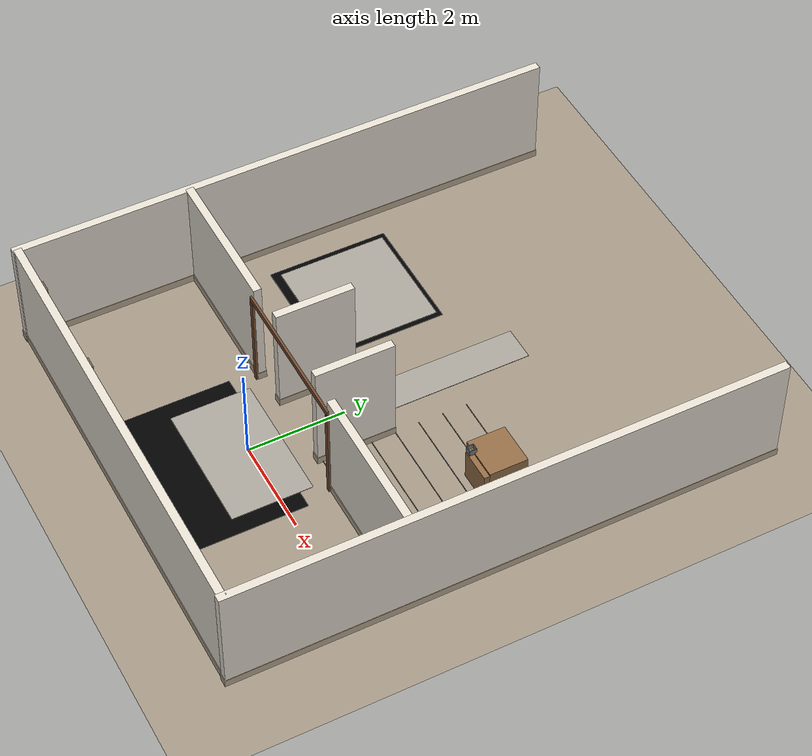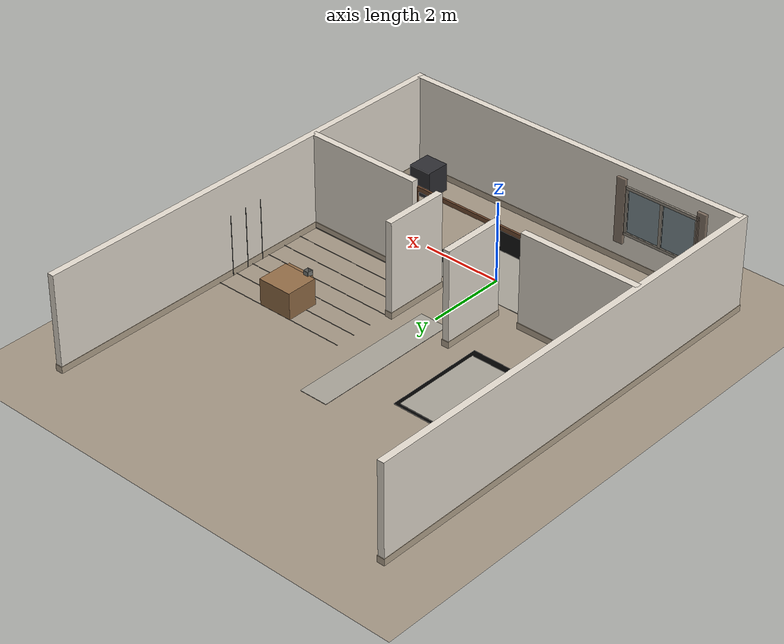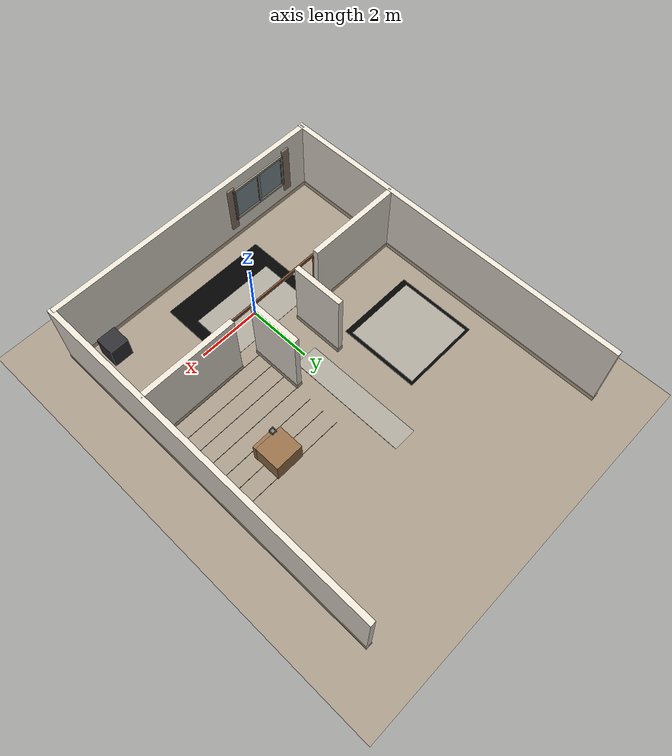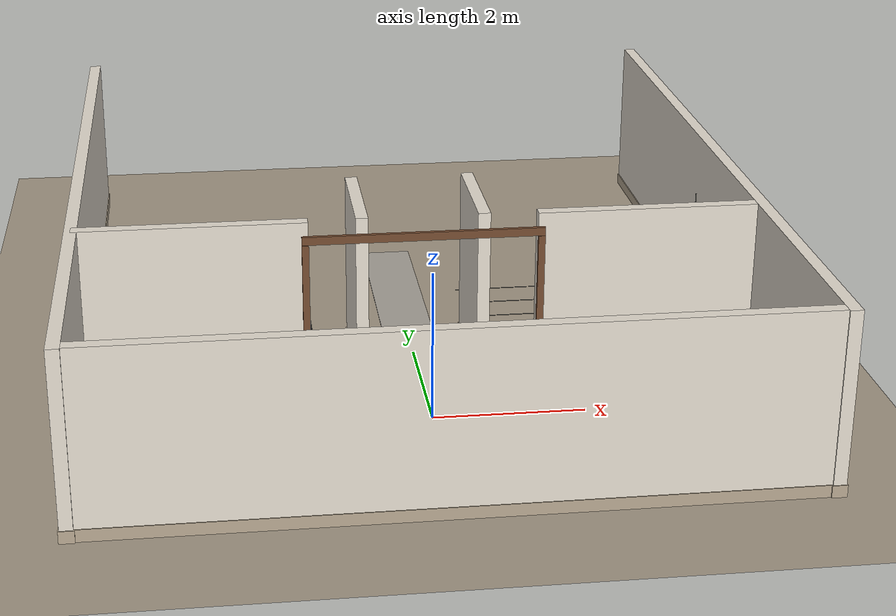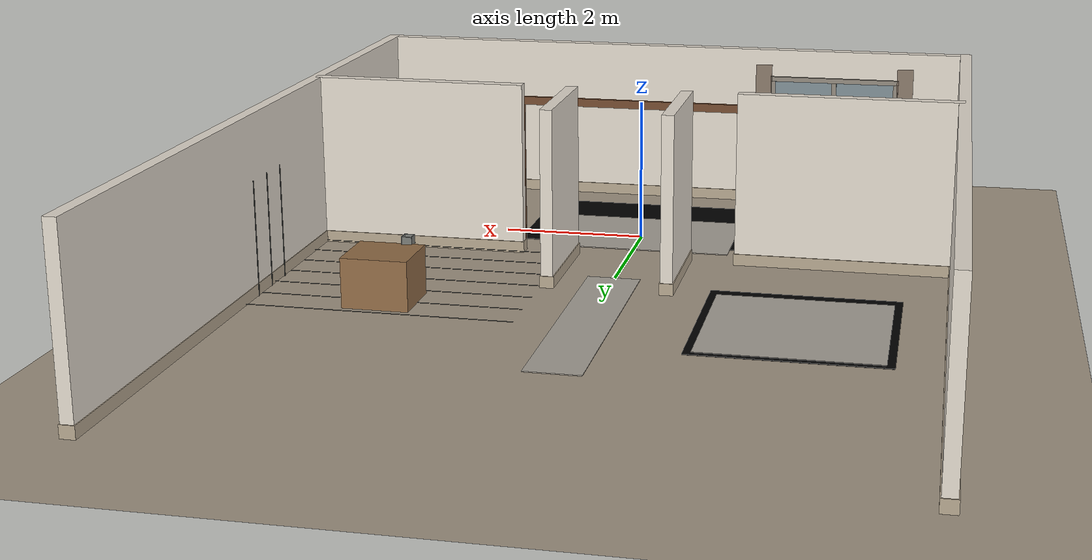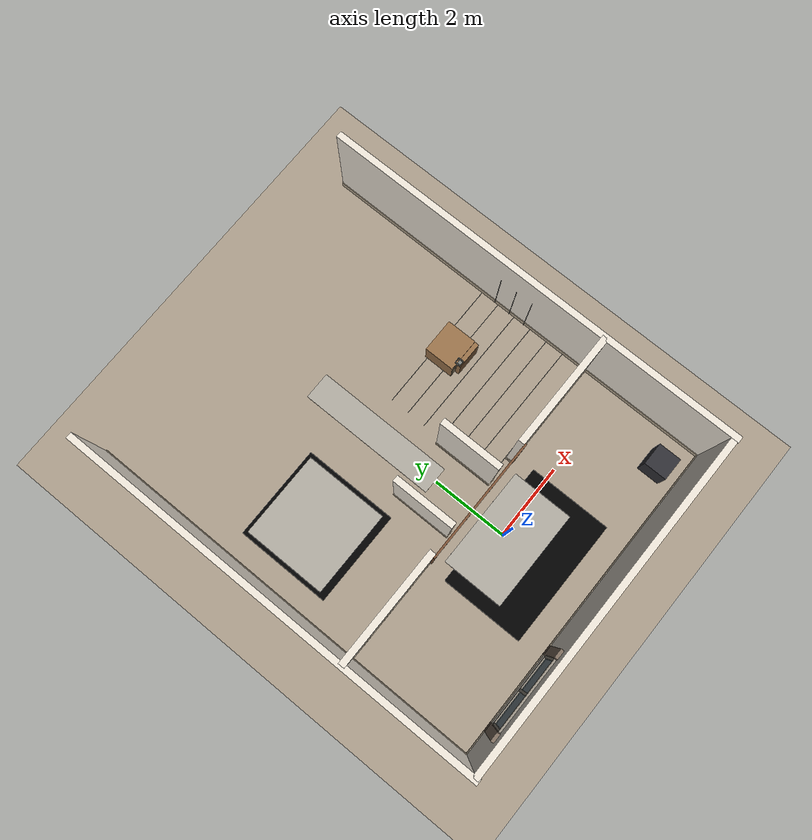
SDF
<sdf version="1.9">
 <world name="tangying_home">
  <model name="world_geometry">
   <static>true</static>
   <link name="body">
    <collision name="geom-0">
     <pose>0 3 0 0 -0 0</pose>
     <geometry><plane><normal>0 0 1</normal><size>40 40</size></plane></geometry>
     <surface><friction><ode><mu>1.0</mu><mu2>1.0</mu2></ode></friction></surface>
    </collision>
    <visual name="geom-0">
     <pose>0 3 0 0 -0 0</pose>
     <geometry><plane><normal>0 0 1</normal><size>40 40</size></plane></geometry>
     <material>
      <ambient>0.639999985695 0.589999973774 0.519999980927 1</ambient>
      <diffuse>0.639999985695 0.589999973774 0.519999980927 1</diffuse>
      <pbr>
       <metal>
        <albedo_map>/assets/xlerobot-home/textures/texture-6.png</albedo_map>
        <roughness>0.85</roughness>
        <metalness>0</metalness>
       </metal>
      </pbr>
     </material>
    </visual>
   </link>
  </model>
  <model name="wall_outer_west">
   <pose>-4.5 3 1.2 0 -0 0</pose>
   <static>true</static>
   <link name="body">
    <inertial>
     <pose>0 0 -0.0422056108731 0 -0 0</pose>
     <mass>9059.436224000001</mass>
     <inertia>
      <ixx>99358.00563662639</ixx>
      <iyy>4624.67001646871</iyy>
      <izz>94773.54077546581</izz>
      <ixy>0.0</ixy>
      <ixz>0.0</ixz>
      <iyz>0.0</iyz>
     </inertia>
    </inertial>
    <collision name="geom-46">
     <geometry><box><size>0.16 11.2 2.4</size></box></geometry>
     <surface><friction><ode><mu>1.0</mu><mu2>1.0</mu2></ode></friction></surface>
    </collision>
    <visual name="geom-46">
     <geometry><box><size>0.16 11.2 2.4</size></box></geometry>
     <material>
      <ambient>0.899999976158 0.879999995232 0.839999973774 1</ambient>
      <diffuse>0.899999976158 0.879999995232 0.839999973774 1</diffuse>
     </material>
    </visual>
    <visual name="geom-47">
     <geometry><box><size>0.164 11.204 2.404</size></box></geometry>
     <material>
      <ambient>0.899999976158 0.870000004768 0.819999992847 1</ambient>
      <diffuse>0.899999976158 0.870000004768 0.819999992847 1</diffuse>
     </material>
    </visual>
    <visual name="geom-48">
     <pose>0 0 -1.12 0 -0 0</pose>
     <geometry><box><size>0.19 11.23 0.16</size></box></geometry>
     <material>
      <ambient>0.72000002861 0.660000026226 0.569999992847 1</ambient>
      <diffuse>0.72000002861 0.660000026226 0.569999992847 1</diffuse>
     </material>
    </visual>
   </link>
  </model>
  <model name="wall_outer_east">
   <pose>4.5 3 1.2 0 -0 0</pose>
   <static>true</static>
   <link name="body">
    <inertial>
     <pose>0 0 -0.0422056108731 0 -0 0</pose>
     <mass>9059.436224000001</mass>
     <inertia>
      <ixx>99358.00563662639</ixx>
      <iyy>4624.67001646871</iyy>
      <izz>94773.54077546581</izz>
      <ixy>0.0</ixy>
      <ixz>0.0</ixz>
      <iyz>0.0</iyz>
     </inertia>
    </inertial>
    <collision name="geom-49">
     <geometry><box><size>0.16 11.2 2.4</size></box></geometry>
     <surface><friction><ode><mu>1.0</mu><mu2>1.0</mu2></ode></friction></surface>
    </collision>
    <visual name="geom-49">
     <geometry><box><size>0.16 11.2 2.4</size></box></geometry>
     <material>
      <ambient>0.899999976158 0.879999995232 0.839999973774 1</ambient>
      <diffuse>0.899999976158 0.879999995232 0.839999973774 1</diffuse>
     </material>
    </visual>
    <visual name="geom-50">
     <geometry><box><size>0.164 11.204 2.404</size></box></geometry>
     <material>
      <ambient>0.899999976158 0.870000004768 0.819999992847 1</ambient>
      <diffuse>0.899999976158 0.870000004768 0.819999992847 1</diffuse>
     </material>
    </visual>
    <visual name="geom-51">
     <pose>0 0 -1.12 0 -0 0</pose>
     <geometry><box><size>0.19 11.23 0.16</size></box></geometry>
     <material>
      <ambient>0.72000002861 0.660000026226 0.569999992847 1</ambient>
      <diffuse>0.72000002861 0.660000026226 0.569999992847 1</diffuse>
     </material>
    </visual>
   </link>
  </model>
  <model name="wall_outer_south">
   <pose>0 -2.5 1.2 0 -0 0</pose>
   <static>true</static>
   <link name="body">
    <inertial>
     <pose>0 0 -0.0422303355034 0 -0 0</pose>
     <mass>7280.393024</mass>
     <inertia>
      <ixx>3716.612141078708</ixx>
      <iyy>52876.7876105292</iyy>
      <izz>49192.48564998741</izz>
      <ixy>0.0</ixy>
      <ixz>0.0</ixz>
      <iyz>0.0</iyz>
     </inertia>
    </inertial>
    <collision name="geom-52">
     <geometry><box><size>9 0.16 2.4</size></box></geometry>
     <surface><friction><ode><mu>1.0</mu><mu2>1.0</mu2></ode></friction></surface>
    </collision>
    <visual name="geom-52">
     <geometry><box><size>9 0.16 2.4</size></box></geometry>
     <material>
      <ambient>0.899999976158 0.879999995232 0.839999973774 1</ambient>
      <diffuse>0.899999976158 0.879999995232 0.839999973774 1</diffuse>
     </material>
    </visual>
    <visual name="geom-53">
     <geometry><box><size>9.004 0.164 2.404</size></box></geometry>
     <material>
      <ambient>0.899999976158 0.870000004768 0.819999992847 1</ambient>
      <diffuse>0.899999976158 0.870000004768 0.819999992847 1</diffuse>
     </material>
    </visual>
    <visual name="geom-54">
     <pose>0 0 -1.12 0 -0 0</pose>
     <geometry><box><size>9.03 0.19 0.16</size></box></geometry>
     <material>
      <ambient>0.72000002861 0.660000026226 0.569999992847 1</ambient>
      <diffuse>0.72000002861 0.660000026226 0.569999992847 1</diffuse>
     </material>
    </visual>
   </link>
  </model>
  <model name="wall_living_west">
   <pose>-3 1 1.2 0 -0 0</pose>
   <static>true</static>
   <link name="body">
    <inertial>
     <pose>0 0 -0.0424818882856 0 -0 0</pose>
     <mass>2428.4570240000003</mass>
     <inertia>
      <ixx>1240.0904939685474</ixx>
      <iyy>3059.8029039627963</iyy>
      <izz>1830.490841155167</izz>
      <ixy>0.0</ixy>
      <ixz>0.0</ixz>
      <iyz>0.0</iyz>
     </inertia>
    </inertial>
    <collision name="geom-58">
     <geometry><box><size>3 0.16 2.4</size></box></geometry>
     <surface><friction><ode><mu>1.0</mu><mu2>1.0</mu2></ode></friction></surface>
    </collision>
    <visual name="geom-58">
     <geometry><box><size>3 0.16 2.4</size></box></geometry>
     <material>
      <ambient>0.879999995232 0.819999992847 0.740000009537 1</ambient>
      <diffuse>0.879999995232 0.819999992847 0.740000009537 1</diffuse>
     </material>
    </visual>
    <visual name="geom-59">
     <geometry><box><size>3.004 0.164 2.404</size></box></geometry>
     <material>
      <ambient>0.899999976158 0.870000004768 0.819999992847 1</ambient>
      <diffuse>0.899999976158 0.870000004768 0.819999992847 1</diffuse>
     </material>
    </visual>
    <visual name="geom-60">
     <pose>0 0 -1.12 0 -0 0</pose>
     <geometry><box><size>3.03 0.19 0.16</size></box></geometry>
     <material>
      <ambient>0.72000002861 0.660000026226 0.569999992847 1</ambient>
      <diffuse>0.72000002861 0.660000026226 0.569999992847 1</diffuse>
     </material>
    </visual>
   </link>
  </model>
  <model name="wall_living_east">
   <pose>3 1 1.2 0 -0 0</pose>
   <static>true</static>
   <link name="body">
    <inertial>
     <pose>0 0 -0.0424818882856 0 -0 0</pose>
     <mass>2428.4570240000003</mass>
     <inertia>
      <ixx>1240.0904939685474</ixx>
      <iyy>3059.8029039627963</iyy>
      <izz>1830.490841155167</izz>
      <ixy>0.0</ixy>
      <ixz>0.0</ixz>
      <iyz>0.0</iyz>
     </inertia>
    </inertial>
    <collision name="geom-61">
     <geometry><box><size>3 0.16 2.4</size></box></geometry>
     <surface><friction><ode><mu>1.0</mu><mu2>1.0</mu2></ode></friction></surface>
    </collision>
    <visual name="geom-61">
     <geometry><box><size>3 0.16 2.4</size></box></geometry>
     <material>
      <ambient>0.879999995232 0.819999992847 0.740000009537 1</ambient>
      <diffuse>0.879999995232 0.819999992847 0.740000009537 1</diffuse>
     </material>
    </visual>
    <visual name="geom-62">
     <geometry><box><size>3.004 0.164 2.404</size></box></geometry>
     <material>
      <ambient>0.899999976158 0.870000004768 0.819999992847 1</ambient>
      <diffuse>0.899999976158 0.870000004768 0.819999992847 1</diffuse>
     </material>
    </visual>
    <visual name="geom-63">
     <pose>0 0 -1.12 0 -0 0</pose>
     <geometry><box><size>3.03 0.19 0.16</size></box></geometry>
     <material>
      <ambient>0.72000002861 0.660000026226 0.569999992847 1</ambient>
      <diffuse>0.72000002861 0.660000026226 0.569999992847 1</diffuse>
     </material>
    </visual>
   </link>
  </model>
  <model name="wall_corridor_kitchen_south">
   <pose>0.8 1.8 1.2 0 -0 0</pose>
   <static>true</static>
   <link name="body">
    <inertial>
     <pose>0 0 -0.0428115300837 0 -0 0</pose>
     <mass>1296.3386239999998</mass>
     <inertia>
      <ixx>936.9857775636466</ixx>
      <iyy>662.2351946158064</iyy>
      <izz>280.50493925435734</izz>
      <ixy>0.0</ixy>
      <ixz>0.0</ixz>
      <iyz>0.0</iyz>
     </inertia>
    </inertial>
    <collision name="geom-64">
     <geometry><box><size>0.16 1.6 2.4</size></box></geometry>
     <surface><friction><ode><mu>1.0</mu><mu2>1.0</mu2></ode></friction></surface>
    </collision>
    <visual name="geom-64">
     <geometry><box><size>0.16 1.6 2.4</size></box></geometry>
     <material>
      <ambient>0.879999995232 0.819999992847 0.740000009537 1</ambient>
      <diffuse>0.879999995232 0.819999992847 0.740000009537 1</diffuse>
     </material>
    </visual>
    <visual name="geom-65">
     <geometry><box><size>0.164 1.604 2.404</size></box></geometry>
     <material>
      <ambient>0.899999976158 0.870000004768 0.819999992847 1</ambient>
      <diffuse>0.899999976158 0.870000004768 0.819999992847 1</diffuse>
     </material>
    </visual>
    <visual name="geom-66">
     <pose>0 0 -1.12 0 -0 0</pose>
     <geometry><box><size>0.19 1.63 0.16</size></box></geometry>
     <material>
      <ambient>0.72000002861 0.660000026226 0.569999992847 1</ambient>
      <diffuse>0.72000002861 0.660000026226 0.569999992847 1</diffuse>
     </material>
    </visual>
   </link>
  </model>
  <model name="wall_corridor_bed_south">
   <pose>-0.8 1.8 1.2 0 -0 0</pose>
   <static>true</static>
   <link name="body">
    <inertial>
     <pose>0 0 -0.0428115300837 0 -0 0</pose>
     <mass>1296.3386239999998</mass>
     <inertia>
      <ixx>936.9857775636466</ixx>
      <iyy>662.2351946158064</iyy>
      <izz>280.50493925435734</izz>
      <ixy>0.0</ixy>
      <ixz>0.0</ixz>
      <iyz>0.0</iyz>
     </inertia>
    </inertial>
    <collision name="geom-70">
     <geometry><box><size>0.16 1.6 2.4</size></box></geometry>
     <surface><friction><ode><mu>1.0</mu><mu2>1.0</mu2></ode></friction></surface>
    </collision>
    <visual name="geom-70">
     <geometry><box><size>0.16 1.6 2.4</size></box></geometry>
     <material>
      <ambient>0.879999995232 0.819999992847 0.740000009537 1</ambient>
      <diffuse>0.879999995232 0.819999992847 0.740000009537 1</diffuse>
     </material>
    </visual>
    <visual name="geom-71">
     <geometry><box><size>0.164 1.604 2.404</size></box></geometry>
     <material>
      <ambient>0.899999976158 0.870000004768 0.819999992847 1</ambient>
      <diffuse>0.899999976158 0.870000004768 0.819999992847 1</diffuse>
     </material>
    </visual>
    <visual name="geom-72">
     <pose>0 0 -1.12 0 -0 0</pose>
     <geometry><box><size>0.19 1.63 0.16</size></box></geometry>
     <material>
      <ambient>0.72000002861 0.660000026226 0.569999992847 1</ambient>
      <diffuse>0.72000002861 0.660000026226 0.569999992847 1</diffuse>
     </material>
    </visual>
   </link>
  </model>
  <model name="living_room">
   <pose>0 -0.7 0.006 0 -0 0</pose>
   <static>true</static>
   <link name="body">
    <inertial>
     <mass>74.80000000000001</mass>
     <inertia>
      <ixx>30.169956666666675</ixx>
      <iyy>72.05795666666667</iyy>
      <izz>102.22666666666667</izz>
      <ixy>0.0</ixy>
      <ixz>0.0</ixz>
      <iyz>0.0</iyz>
     </inertia>
    </inertial>
    <visual name="geom-82">
     <geometry><box><size>3.4 2.2 0.01</size></box></geometry>
     <material><ambient>0 0 0 0</ambient><diffuse>0 0 0 0</diffuse></material>
    </visual>
   </link>
  </model>
  <model name="bedroom">
   <pose>-2.6 3.55 0.006 0 -0 0</pose>
   <static>true</static>
   <link name="body">
    <inertial>
     <mass>62.5</mass>
     <inertia>
      <ixx>32.55260416666666</ixx>
      <iyy>32.55260416666666</iyy>
      <izz>65.10416666666667</izz>
      <ixy>0.0</ixy>
      <ixz>0.0</ixz>
      <iyz>0.0</iyz>
     </inertia>
    </inertial>
    <visual name="geom-85">
     <geometry><box><size>2.5 2.5 0.01</size></box></geometry>
     <material><ambient>0 0 0 0</ambient><diffuse>0 0 0 0</diffuse></material>
    </visual>
   </link>
  </model>
  <model name="living_rug">
   <pose>0 -0.15 0.012 0 -0 0</pose>
   <static>true</static>
   <link name="body">
    <inertial>
     <mass>53.136</mass>
     <inertia>
      <ixx>11.910186431999998</ixx>
      <iyy>32.280757632000004</iyy>
      <izz>44.189668800000014</izz>
      <ixy>0.0</ixy>
      <ixz>0.0</ixz>
      <iyz>0.0</iyz>
     </inertia>
    </inertial>
    <visual name="geom-87">
     <geometry><box><size>2.7 1.64 0.012</size></box></geometry>
     <material>
      <ambient>0.660000026226 0.639999985695 0.600000023842 1</ambient>
      <diffuse>0.660000026226 0.639999985695 0.600000023842 1</diffuse>
      <pbr>
       <metal>
        <albedo_map>/assets/xlerobot-home/textures/texture-7.png</albedo_map>
        <roughness>0.85</roughness>
        <metalness>0</metalness>
       </metal>
      </pbr>
     </material>
    </visual>
   </link>
  </model>
  <model name="corridor_runner">
   <pose>0 3.9 0.012 0 -0 0</pose>
   <static>true</static>
   <link name="body">
    <inertial>
     <mass>31.968000000000004</mass>
     <inertia>
      <ixx>36.47054361600001</ixx>
      <iyy>1.3814012160000002</iyy>
      <izz>37.85117760000001</izz>
      <ixy>0.0</ixy>
      <ixz>0.0</ixz>
      <iyz>0.0</iyz>
     </inertia>
    </inertial>
    <visual name="geom-88">
     <geometry><box><size>0.72 3.7 0.012</size></box></geometry>
     <material>
      <ambient>0.660000026226 0.639999985695 0.600000023842 1</ambient>
      <diffuse>0.660000026226 0.639999985695 0.600000023842 1</diffuse>
      <pbr>
       <metal>
        <albedo_map>/assets/xlerobot-home/textures/texture-7.png</albedo_map>
        <roughness>0.85</roughness>
        <metalness>0</metalness>
       </metal>
      </pbr>
     </material>
    </visual>
   </link>
  </model>
  <model name="bedroom_rug">
   <pose>-2.6 3.6 0.012 0 -0 0</pose>
   <static>true</static>
   <link name="body">
    <inertial>
     <mass>61.824000000000005</mass>
     <inertia>
      <ixx>25.851417088000005</ixx>
      <iyy>27.254821887999995</iyy>
      <izz>53.10475520000001</izz>
      <ixy>0.0</ixy>
      <ixz>0.0</ixz>
      <iyz>0.0</iyz>
     </inertia>
    </inertial>
    <visual name="geom-90">
     <geometry><box><size>2.3 2.24 0.012</size></box></geometry>
     <material>
      <ambient>0.660000026226 0.639999985695 0.600000023842 1</ambient>
      <diffuse>0.660000026226 0.639999985695 0.600000023842 1</diffuse>
      <pbr>
       <metal>
        <albedo_map>/assets/xlerobot-home/textures/texture-7.png</albedo_map>
        <roughness>0.85</roughness>
        <metalness>0</metalness>
       </metal>
      </pbr>
     </material>
    </visual>
   </link>
  </model>
  <model name="front_tray">
   <pose>3.6 -1.8 0.35 0 -0 0</pose>
   <static>true</static>
   <link name="body">
    <inertial>
     <mass>252.0</mass>
     <inertia>
      <ixx>17.849999999999998</ixx>
      <iyy>17.849999999999998</iyy>
      <izz>15.12</izz>
      <ixy>0.0</ixy>
      <ixz>0.0</ixz>
      <iyz>0.0</iyz>
     </inertia>
    </inertial>
    <collision name="geom-104">
     <geometry><box><size>0.6 0.6 0.7</size></box></geometry>
     <surface><friction><ode><mu>1.0</mu><mu2>1.0</mu2></ode></friction></surface>
    </collision>
    <visual name="geom-104">
     <geometry><box><size>0.6 0.6 0.7</size></box></geometry>
     <material>
      <ambient>0.180000007153 0.180000007153 0.20000000298 1</ambient>
      <diffuse>0.180000007153 0.180000007153 0.20000000298 1</diffuse>
     </material>
    </visual>
   </link>
  </model>
  <model name="home_task_table">
   <pose>2.6625 3.76 0.4 0 -0 0</pose>
   <static>true</static>
   <link name="body">
    <inertial>
     <pose>0.00937964457856 -0.0524855761563 -0.00439009829094 0 -0 0</pose>
     <mass>517.1837759279829</mass>
     <inertia>
      <ixx>53.262168987537436</ixx>
      <iyy>50.88755423400677</iyy>
      <izz>66.56611024397859</izz>
      <ixy>1.9283424164576104</ixy>
      <ixz>0.17274462609394747</ixz>
      <iyz>-0.8997685256664112</iyz>
     </inertia>
    </inertial>
    <collision name="geom-105">
     <geometry><box><size>0.875 0.79 0.66</size></box></geometry>
     <surface><friction><ode><mu>1.0</mu><mu2>1.0</mu2></ode></friction></surface>
    </collision>
    <visual name="geom-105">
     <geometry><box><size>0.875 0.79 0.66</size></box></geometry>
     <material>
      <ambient>0.579999983311 0.430000007153 0.280000001192 1</ambient>
      <diffuse>0.579999983311 0.430000007153 0.280000001192 1</diffuse>
      <pbr>
       <metal>
        <albedo_map>/assets/xlerobot-home/textures/texture-2.png</albedo_map>
        <roughness>0.85</roughness>
        <metalness>0</metalness>
       </metal>
      </pbr>
     </material>
    </visual>
    <collision name="geom-106">
     <pose>0.0875 -0.45 -0.04 0 -0 0</pose>
     <geometry><box><size>0.7 0.12 0.66</size></box></geometry>
     <surface><friction><ode><mu>1.0</mu><mu2>1.0</mu2></ode></friction></surface>
    </collision>
    <visual name="geom-106">
     <pose>0.0875 -0.45 -0.04 0 -0 0</pose>
     <geometry><box><size>0.7 0.12 0.66</size></box></geometry>
     <material>
      <ambient>0.579999983311 0.430000007153 0.280000001192 1</ambient>
      <diffuse>0.579999983311 0.430000007153 0.280000001192 1</diffuse>
      <pbr>
       <metal>
        <albedo_map>/assets/xlerobot-home/textures/texture-2.png</albedo_map>
        <roughness>0.85</roughness>
        <metalness>0</metalness>
       </metal>
      </pbr>
     </material>
    </visual>
    <visual name="geom-107">
     <pose>-0.29 -0.398 -0.01 0 -0 0</pose>
     <geometry><box><size>0.278 0.012 0.55</size></box></geometry>
     <material>
      <ambient>0.589999973774 0.519999980927 0.409999996424 1</ambient>
      <diffuse>0.589999973774 0.519999980927 0.409999996424 1</diffuse>
     </material>
    </visual>
    <visual name="geom-108">
     <pose>-0.29 -0.413 0.15 0 -1.57079632679 0</pose>
     <geometry><capsule><radius>0.004</radius><length>0.08999999999999997</length></capsule></geometry>
     <material>
      <ambient>0.340000003576 0.34999999404 0.340000003576 1</ambient>
      <diffuse>0.340000003576 0.34999999404 0.340000003576 1</diffuse>
     </material>
    </visual>
    <visual name="geom-109">
     <pose>0 -0.398 -0.01 0 -0 0</pose>
     <geometry><box><size>0.278 0.012 0.55</size></box></geometry>
     <material>
      <ambient>0.589999973774 0.519999980927 0.409999996424 1</ambient>
      <diffuse>0.589999973774 0.519999980927 0.409999996424 1</diffuse>
     </material>
    </visual>
    <visual name="geom-110">
     <pose>0 -0.413 0.15 0 -1.57079632679 0</pose>
     <geometry><capsule><radius>0.004</radius><length>0.09</length></capsule></geometry>
     <material>
      <ambient>0.340000003576 0.34999999404 0.340000003576 1</ambient>
      <diffuse>0.340000003576 0.34999999404 0.340000003576 1</diffuse>
     </material>
    </visual>
    <visual name="geom-111">
     <pose>0.29 -0.398 -0.01 0 -0 0</pose>
     <geometry><box><size>0.278 0.012 0.55</size></box></geometry>
     <material>
      <ambient>0.589999973774 0.519999980927 0.409999996424 1</ambient>
      <diffuse>0.589999973774 0.519999980927 0.409999996424 1</diffuse>
     </material>
    </visual>
    <visual name="geom-112">
     <pose>0.29 -0.413 0.15 0 -1.57079632679 0</pose>
     <geometry><capsule><radius>0.004</radius><length>0.08999999999999997</length></capsule></geometry>
     <material>
      <ambient>0.340000003576 0.34999999404 0.340000003576 1</ambient>
      <diffuse>0.340000003576 0.34999999404 0.340000003576 1</diffuse>
     </material>
    </visual>
   </link>
  </model>
  <model name="kitchen_tray">
   <pose>2.46 3.335 0.71 0 -0 0</pose>
   <static>true</static>
   <link name="body">
    <inertial>
     <pose>-1.87036029097e-19 -5.25414188609e-20 0.0102469135802 0 -0 0</pose>
     <mass>1.9439999999999997</mass>
     <inertia>
      <ixx>0.008149281481481504</ixx>
      <iyy>0.007637881481481502</iyy>
      <izz>0.00765220000000002</izz>
      <ixy>0.0</ixy>
      <ixz>0.0</ixz>
      <iyz>0.0</iyz>
     </inertia>
    </inertial>
    <collision name="geom-135">
     <geometry><box><size>0.12 0.13 0.04</size></box></geometry>
     <surface><friction><ode><mu>1.0</mu><mu2>1.0</mu2></ode></friction></surface>
    </collision>
    <visual name="geom-135">
     <geometry><box><size>0.12 0.13 0.04</size></box></geometry>
     <material>
      <ambient>0.479999989271 0.490000009537 0.469999998808 1</ambient>
      <diffuse>0.479999989271 0.490000009537 0.469999998808 1</diffuse>
     </material>
    </visual>
    <collision name="geom-136">
     <pose>0 0 -0.035 0 -0 0</pose>
     <geometry><box><size>0.12 0.13 0.04</size></box></geometry>
     <surface><friction><ode><mu>1.0</mu><mu2>1.0</mu2></ode></friction></surface>
    </collision>
    <visual name="geom-136">
     <pose>0 0 -0.035 0 -0 0</pose>
     <geometry><box><size>0.12 0.13 0.04</size></box></geometry>
     <material><ambient>0 0 0 0</ambient><diffuse>0 0 0 0</diffuse></material>
    </visual>
    <collision name="geom-137">
     <pose>-0.065 0 0.06 0 -0 0</pose>
     <geometry><box><size>0.01 0.15 0.12</size></box></geometry>
     <surface><friction><ode><mu>1.0</mu><mu2>1.0</mu2></ode></friction></surface>
    </collision>
    <visual name="geom-137">
     <pose>-0.065 0 0.06 0 -0 0</pose>
     <geometry><box><size>0.01 0.15 0.12</size></box></geometry>
     <material>
      <ambient>0.479999989271 0.490000009537 0.469999998808 1</ambient>
      <diffuse>0.479999989271 0.490000009537 0.469999998808 1</diffuse>
     </material>
    </visual>
    <collision name="geom-138">
     <pose>0.065 0 0.06 0 -0 0</pose>
     <geometry><box><size>0.01 0.15 0.12</size></box></geometry>
     <surface><friction><ode><mu>1.0</mu><mu2>1.0</mu2></ode></friction></surface>
    </collision>
    <visual name="geom-138">
     <pose>0.065 0 0.06 0 -0 0</pose>
     <geometry><box><size>0.01 0.15 0.12</size></box></geometry>
     <material>
      <ambient>0.479999989271 0.490000009537 0.469999998808 1</ambient>
      <diffuse>0.479999989271 0.490000009537 0.469999998808 1</diffuse>
     </material>
    </visual>
    <collision name="geom-139">
     <pose>0 -0.07 0.06 0 -0 0</pose>
     <geometry><box><size>0.14 0.01 0.12</size></box></geometry>
     <surface><friction><ode><mu>1.0</mu><mu2>1.0</mu2></ode></friction></surface>
    </collision>
    <visual name="geom-139">
     <pose>0 -0.07 0.06 0 -0 0</pose>
     <geometry><box><size>0.14 0.01 0.12</size></box></geometry>
     <material>
      <ambient>0.479999989271 0.490000009537 0.469999998808 1</ambient>
      <diffuse>0.479999989271 0.490000009537 0.469999998808 1</diffuse>
     </material>
    </visual>
    <collision name="geom-140">
     <pose>0 0.07 0.06 0 -0 0</pose>
     <geometry><box><size>0.14 0.01 0.12</size></box></geometry>
     <surface><friction><ode><mu>1.0</mu><mu2>1.0</mu2></ode></friction></surface>
    </collision>
    <visual name="geom-140">
     <pose>0 0.07 0.06 0 -0 0</pose>
     <geometry><box><size>0.14 0.01 0.12</size></box></geometry>
     <material>
      <ambient>0.479999989271 0.490000009537 0.469999998808 1</ambient>
      <diffuse>0.479999989271 0.490000009537 0.469999998808 1</diffuse>
     </material>
    </visual>
   </link>
  </model>
  <model name="kitchen_floor_grout_y_0">
   <pose>2.65 1.1 0.02 0 -0 0</pose>
   <static>true</static>
   <link name="body">
    <inertial>
     <mass>0.16992000000000002</mass>
     <inertia>
      <ixx>2.2656000000000004e-06</ixx>
      <iyy>0.17744768256000001</iyy>
      <izz>0.17744949504000004</izz>
      <ixy>0.0</ixy>
      <ixz>0.0</ixz>
      <iyz>0.0</iyz>
     </inertia>
    </inertial>
    <visual name="geom-157">
     <geometry><box><size>3.54 0.012 0.004</size></box></geometry>
     <material>
      <ambient>0.300000011921 0.310000002384 0.300000011921 1</ambient>
      <diffuse>0.300000011921 0.310000002384 0.300000011921 1</diffuse>
     </material>
    </visual>
   </link>
  </model>
  <model name="kitchen_floor_grout_y_1">
   <pose>2.65 1.6 0.02 0 -0 0</pose>
   <static>true</static>
   <link name="body">
    <inertial>
     <mass>0.16992000000000002</mass>
     <inertia>
      <ixx>2.2656000000000004e-06</ixx>
      <iyy>0.17744768256000001</iyy>
      <izz>0.17744949504000004</izz>
      <ixy>0.0</ixy>
      <ixz>0.0</ixz>
      <iyz>0.0</iyz>
     </inertia>
    </inertial>
    <visual name="geom-158">
     <geometry><box><size>3.54 0.012 0.004</size></box></geometry>
     <material>
      <ambient>0.300000011921 0.310000002384 0.300000011921 1</ambient>
      <diffuse>0.300000011921 0.310000002384 0.300000011921 1</diffuse>
     </material>
    </visual>
   </link>
  </model>
  <model name="kitchen_floor_grout_y_2">
   <pose>2.65 2.1 0.02 0 -0 0</pose>
   <static>true</static>
   <link name="body">
    <inertial>
     <mass>0.16992000000000002</mass>
     <inertia>
      <ixx>2.2656000000000004e-06</ixx>
      <iyy>0.17744768256000001</iyy>
      <izz>0.17744949504000004</izz>
      <ixy>0.0</ixy>
      <ixz>0.0</ixz>
      <iyz>0.0</iyz>
     </inertia>
    </inertial>
    <visual name="geom-159">
     <geometry><box><size>3.54 0.012 0.004</size></box></geometry>
     <material>
      <ambient>0.300000011921 0.310000002384 0.300000011921 1</ambient>
      <diffuse>0.300000011921 0.310000002384 0.300000011921 1</diffuse>
     </material>
    </visual>
   </link>
  </model>
  <model name="kitchen_floor_grout_y_3">
   <pose>2.65 2.6 0.02 0 -0 0</pose>
   <static>true</static>
   <link name="body">
    <inertial>
     <mass>0.16992000000000002</mass>
     <inertia>
      <ixx>2.2656000000000004e-06</ixx>
      <iyy>0.17744768256000001</iyy>
      <izz>0.17744949504000004</izz>
      <ixy>0.0</ixy>
      <ixz>0.0</ixz>
      <iyz>0.0</iyz>
     </inertia>
    </inertial>
    <visual name="geom-160">
     <geometry><box><size>3.54 0.012 0.004</size></box></geometry>
     <material>
      <ambient>0.300000011921 0.310000002384 0.300000011921 1</ambient>
      <diffuse>0.300000011921 0.310000002384 0.300000011921 1</diffuse>
     </material>
    </visual>
   </link>
  </model>
  <model name="kitchen_floor_grout_y_4">
   <pose>2.65 3.1 0.02 0 -0 0</pose>
   <static>true</static>
   <link name="body">
    <inertial>
     <mass>0.16992000000000002</mass>
     <inertia>
      <ixx>2.2656000000000004e-06</ixx>
      <iyy>0.17744768256000001</iyy>
      <izz>0.17744949504000004</izz>
      <ixy>0.0</ixy>
      <ixz>0.0</ixz>
      <iyz>0.0</iyz>
     </inertia>
    </inertial>
    <visual name="geom-161">
     <geometry><box><size>3.54 0.012 0.004</size></box></geometry>
     <material>
      <ambient>0.300000011921 0.310000002384 0.300000011921 1</ambient>
      <diffuse>0.300000011921 0.310000002384 0.300000011921 1</diffuse>
     </material>
    </visual>
   </link>
  </model>
  <model name="kitchen_floor_grout_y_5">
   <pose>2.65 3.6 0.02 0 -0 0</pose>
   <static>true</static>
   <link name="body">
    <inertial>
     <mass>0.16992000000000002</mass>
     <inertia>
      <ixx>2.2656000000000004e-06</ixx>
      <iyy>0.17744768256000001</iyy>
      <izz>0.17744949504000004</izz>
      <ixy>0.0</ixy>
      <ixz>0.0</ixz>
      <iyz>0.0</iyz>
     </inertia>
    </inertial>
    <visual name="geom-162">
     <geometry><box><size>3.54 0.012 0.004</size></box></geometry>
     <material>
      <ambient>0.300000011921 0.310000002384 0.300000011921 1</ambient>
      <diffuse>0.300000011921 0.310000002384 0.300000011921 1</diffuse>
     </material>
    </visual>
   </link>
  </model>
  <model name="kitchen_floor_grout_y_6">
   <pose>2.65 4.1 0.02 0 -0 0</pose>
   <static>true</static>
   <link name="body">
    <inertial>
     <mass>0.16992000000000002</mass>
     <inertia>
      <ixx>2.2656000000000004e-06</ixx>
      <iyy>0.17744768256000001</iyy>
      <izz>0.17744949504000004</izz>
      <ixy>0.0</ixy>
      <ixz>0.0</ixz>
      <iyz>0.0</iyz>
     </inertia>
    </inertial>
    <visual name="geom-163">
     <geometry><box><size>3.54 0.012 0.004</size></box></geometry>
     <material>
      <ambient>0.300000011921 0.310000002384 0.300000011921 1</ambient>
      <diffuse>0.300000011921 0.310000002384 0.300000011921 1</diffuse>
     </material>
    </visual>
   </link>
  </model>
  <model name="kitchen_east_grout_v_0">
   <pose>4.391 2.8 0.775 0 -0 0</pose>
   <static>true</static>
   <link name="body">
    <inertial>
     <mass>0.14880000000000002</mass>
     <inertia>
      <ixx>0.02979278560000001</ixx>
      <iyy>0.02979179360000001</iyy>
      <izz>2.5792000000000006e-06</izz>
      <ixy>0.0</ixy>
      <ixz>0.0</ixz>
      <iyz>0.0</iyz>
     </inertia>
    </inertial>
    <visual name="geom-199">
     <geometry><box><size>0.008 0.012 1.55</size></box></geometry>
     <material>
      <ambient>0.300000011921 0.310000002384 0.300000011921 1</ambient>
      <diffuse>0.300000011921 0.310000002384 0.300000011921 1</diffuse>
     </material>
    </visual>
   </link>
  </model>
  <model name="kitchen_east_grout_v_1">
   <pose>4.391 3.25 0.775 0 -0 0</pose>
   <static>true</static>
   <link name="body">
    <inertial>
     <mass>0.14880000000000002</mass>
     <inertia>
      <ixx>0.02979278560000001</ixx>
      <iyy>0.02979179360000001</iyy>
      <izz>2.5792000000000006e-06</izz>
      <ixy>0.0</ixy>
      <ixz>0.0</ixz>
      <iyz>0.0</iyz>
     </inertia>
    </inertial>
    <visual name="geom-200">
     <geometry><box><size>0.008 0.012 1.55</size></box></geometry>
     <material>
      <ambient>0.300000011921 0.310000002384 0.300000011921 1</ambient>
      <diffuse>0.300000011921 0.310000002384 0.300000011921 1</diffuse>
     </material>
    </visual>
   </link>
  </model>
  <model name="kitchen_east_grout_v_2">
   <pose>4.391 3.7 0.775 0 -0 0</pose>
   <static>true</static>
   <link name="body">
    <inertial>
     <mass>0.14880000000000002</mass>
     <inertia>
      <ixx>0.02979278560000001</ixx>
      <iyy>0.02979179360000001</iyy>
      <izz>2.5792000000000006e-06</izz>
      <ixy>0.0</ixy>
      <ixz>0.0</ixz>
      <iyz>0.0</iyz>
     </inertia>
    </inertial>
    <visual name="geom-201">
     <geometry><box><size>0.008 0.012 1.55</size></box></geometry>
     <material>
      <ambient>0.300000011921 0.310000002384 0.300000011921 1</ambient>
      <diffuse>0.300000011921 0.310000002384 0.300000011921 1</diffuse>
     </material>
    </visual>
   </link>
  </model>
  <model name="living_door_trim_left">
   <pose>-1.54 0.9 1.05 0 -0 0</pose>
   <static>true</static>
   <link name="body">
    <inertial>
     <mass>9.45</mass>
     <inertia>
      <ixx>3.4748437500000002</ixx>
      <iyy>3.47925375</iyy>
      <izz>0.008347499999999999</izz>
      <ixy>0.0</ixy>
      <ixz>0.0</ixz>
      <iyz>0.0</iyz>
     </inertia>
    </inertial>
    <visual name="geom-241">
     <geometry><box><size>0.09 0.05 2.1</size></box></geometry>
     <material>
      <ambient>0.460000008345 0.300000011921 0.189999997616 1</ambient>
      <diffuse>0.460000008345 0.300000011921 0.189999997616 1</diffuse>
     </material>
    </visual>
   </link>
  </model>
  <model name="living_door_trim_right">
   <pose>1.54 0.9 1.05 0 -0 0</pose>
   <static>true</static>
   <link name="body">
    <inertial>
     <mass>9.45</mass>
     <inertia>
      <ixx>3.4748437500000002</ixx>
      <iyy>3.47925375</iyy>
      <izz>0.008347499999999999</izz>
      <ixy>0.0</ixy>
      <ixz>0.0</ixz>
      <iyz>0.0</iyz>
     </inertia>
    </inertial>
    <visual name="geom-242">
     <geometry><box><size>0.09 0.05 2.1</size></box></geometry>
     <material>
      <ambient>0.460000008345 0.300000011921 0.189999997616 1</ambient>
      <diffuse>0.460000008345 0.300000011921 0.189999997616 1</diffuse>
     </material>
    </visual>
   </link>
  </model>
  <model name="living_door_trim_top">
   <pose>0 0.9 2.16 0 -0 0</pose>
   <static>true</static>
   <link name="body">
    <inertial>
     <mass>17.435</mass>
     <inertia>
      <ixx>0.02121258333333333</ixx>
      <iyy>14.617794583333334</iyy>
      <izz>14.60384658333333</izz>
      <ixy>0.0</ixy>
      <ixz>0.0</ixz>
      <iyz>0.0</iyz>
     </inertia>
    </inertial>
    <visual name="geom-243">
     <geometry><box><size>3.17 0.05 0.11</size></box></geometry>
     <material>
      <ambient>0.460000008345 0.300000011921 0.189999997616 1</ambient>
      <diffuse>0.460000008345 0.300000011921 0.189999997616 1</diffuse>
     </material>
    </visual>
   </link>
  </model>
  <model name="living_window_glass">
   <pose>-2.55 -2.405 1.38 0 -0 0</pose>
   <static>true</static>
   <link name="body">
    <inertial>
     <mass>47.52000000000001</mass>
     <inertia>
      <ixx>4.793880960000002</ixx>
      <iyy>17.622000000000003</iyy>
      <izz>12.832680960000005</izz>
      <ixy>0.0</ixy>
      <ixz>0.0</ixz>
      <iyz>0.0</iyz>
     </inertia>
    </inertial>
    <visual name="geom-247">
     <geometry><box><size>1.8 0.024 1.1</size></box></geometry>
     <material>
      <ambient>0.239999994636 0.379999995232 0.460000008345 0.550000011921</ambient>
      <diffuse>0.239999994636 0.379999995232 0.460000008345 0.550000011921</diffuse>
     </material>
    </visual>
   </link>
  </model>
  <model name="living_window_top">
   <pose>-2.55 -2.385 1.96 0 -0 0</pose>
   <static>true</static>
   <link name="body">
    <inertial>
     <mass>6.790000000000001</mass>
     <inertia>
      <ixx>0.004187166666666668</ixx>
      <iyy>2.132342916666667</iyy>
      <izz>2.130984916666667</izz>
      <ixy>0.0</ixy>
      <ixz>0.0</ixz>
      <iyz>0.0</iyz>
     </inertia>
    </inertial>
    <visual name="geom-248">
     <geometry><box><size>1.94 0.05 0.07</size></box></geometry>
     <material>
      <ambient>0.579999983311 0.550000011921 0.5 1</ambient>
      <diffuse>0.579999983311 0.550000011921 0.5 1</diffuse>
     </material>
    </visual>
   </link>
  </model>
  <model name="living_window_bottom">
   <pose>-2.55 -2.385 0.8 0 -0 0</pose>
   <static>true</static>
   <link name="body">
    <inertial>
     <mass>6.790000000000001</mass>
     <inertia>
      <ixx>0.004187166666666668</ixx>
      <iyy>2.132342916666667</iyy>
      <izz>2.130984916666667</izz>
      <ixy>0.0</ixy>
      <ixz>0.0</ixz>
      <iyz>0.0</iyz>
     </inertia>
    </inertial>
    <visual name="geom-249">
     <geometry><box><size>1.94 0.05 0.07</size></box></geometry>
     <material>
      <ambient>0.579999983311 0.550000011921 0.5 1</ambient>
      <diffuse>0.579999983311 0.550000011921 0.5 1</diffuse>
     </material>
    </visual>
   </link>
  </model>
  <model name="living_window_left">
   <pose>-3.48 -2.385 1.38 0 -0 0</pose>
   <static>true</static>
   <link name="body">
    <inertial>
     <mass>3.850000000000001</mass>
     <inertia>
      <ixx>0.3890104166666668</ixx>
      <iyy>0.3897804166666668</iyy>
      <izz>0.0023741666666666677</izz>
      <ixy>0.0</ixy>
      <ixz>0.0</ixz>
      <iyz>0.0</iyz>
     </inertia>
    </inertial>
    <visual name="geom-250">
     <geometry><box><size>0.07 0.05 1.1</size></box></geometry>
     <material>
      <ambient>0.579999983311 0.550000011921 0.5 1</ambient>
      <diffuse>0.579999983311 0.550000011921 0.5 1</diffuse>
     </material>
    </visual>
   </link>
  </model>
  <model name="living_window_center">
   <pose>-2.55 -2.385 1.38 0 -0 0</pose>
   <static>true</static>
   <link name="body">
    <inertial>
     <mass>3.850000000000001</mass>
     <inertia>
      <ixx>0.3890104166666668</ixx>
      <iyy>0.3897804166666668</iyy>
      <izz>0.0023741666666666677</izz>
      <ixy>0.0</ixy>
      <ixz>0.0</ixz>
      <iyz>0.0</iyz>
     </inertia>
    </inertial>
    <visual name="geom-251">
     <geometry><box><size>0.07 0.05 1.1</size></box></geometry>
     <material>
      <ambient>0.579999983311 0.550000011921 0.5 1</ambient>
      <diffuse>0.579999983311 0.550000011921 0.5 1</diffuse>
     </material>
    </visual>
   </link>
  </model>
  <model name="living_window_right">
   <pose>-1.62 -2.385 1.38 0 -0 0</pose>
   <static>true</static>
   <link name="body">
    <inertial>
     <mass>3.850000000000001</mass>
     <inertia>
      <ixx>0.3890104166666668</ixx>
      <iyy>0.3897804166666668</iyy>
      <izz>0.0023741666666666677</izz>
      <ixy>0.0</ixy>
      <ixz>0.0</ixz>
      <iyz>0.0</iyz>
     </inertia>
    </inertial>
    <visual name="geom-252">
     <geometry><box><size>0.07 0.05 1.1</size></box></geometry>
     <material>
      <ambient>0.579999983311 0.550000011921 0.5 1</ambient>
      <diffuse>0.579999983311 0.550000011921 0.5 1</diffuse>
     </material>
    </visual>
   </link>
  </model>
  <model name="living_curtain_left">
   <pose>-3.62 -2.36 1.35 0 -0 0</pose>
   <static>true</static>
   <link name="body">
    <inertial>
     <mass>27.552000000000003</mass>
     <inertia>
      <ixx>6.186571999999999</ixx>
      <iyy>6.307571199999999</iyy>
      <izz>0.14350000000000002</izz>
      <ixy>0.0</ixy>
      <ixz>0.0</ixz>
      <iyz>0.0</iyz>
     </inertia>
    </inertial>
    <visual name="geom-253">
     <geometry><box><size>0.24 0.07 1.64</size></box></geometry>
     <material>
      <ambient>0.550000011921 0.479999989271 0.419999986887 0.879999995232</ambient>
      <diffuse>0.550000011921 0.479999989271 0.419999986887 0.879999995232</diffuse>
     </material>
    </visual>
   </link>
  </model>
  <model name="living_curtain_right">
   <pose>-1.48 -2.36 1.35 0 -0 0</pose>
   <static>true</static>
   <link name="body">
    <inertial>
     <mass>27.552000000000003</mass>
     <inertia>
      <ixx>6.186571999999999</ixx>
      <iyy>6.307571199999999</iyy>
      <izz>0.14350000000000002</izz>
      <ixy>0.0</ixy>
      <ixz>0.0</ixz>
      <iyz>0.0</iyz>
     </inertia>
    </inertial>
    <visual name="geom-254">
     <geometry><box><size>0.24 0.07 1.64</size></box></geometry>
     <material>
      <ambient>0.550000011921 0.479999989271 0.419999986887 0.879999995232</ambient>
      <diffuse>0.550000011921 0.479999989271 0.419999986887 0.879999995232</diffuse>
     </material>
    </visual>
   </link>
  </model>
 </world>
</sdf>
